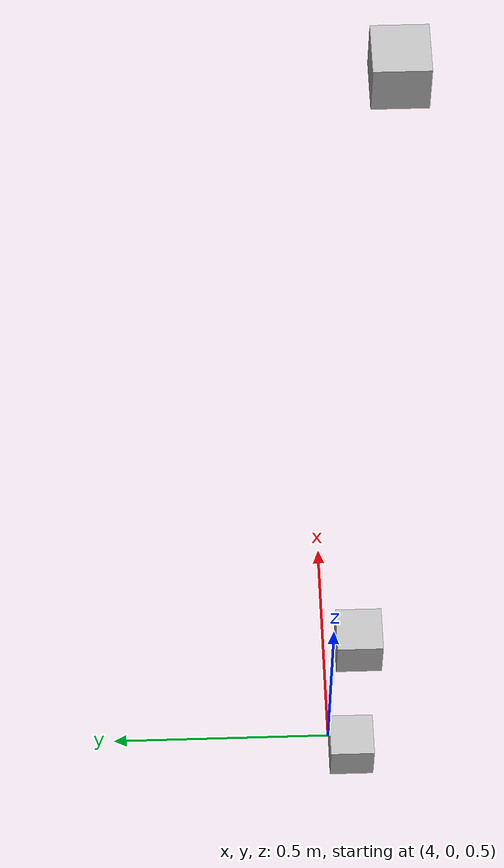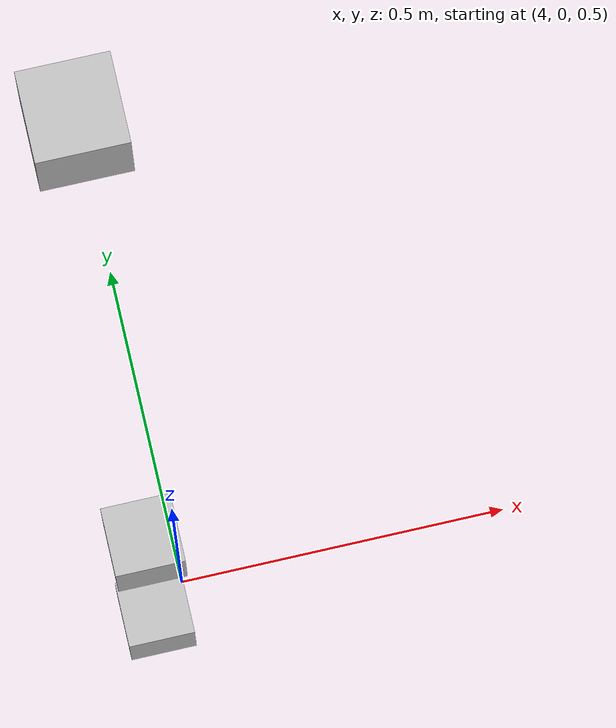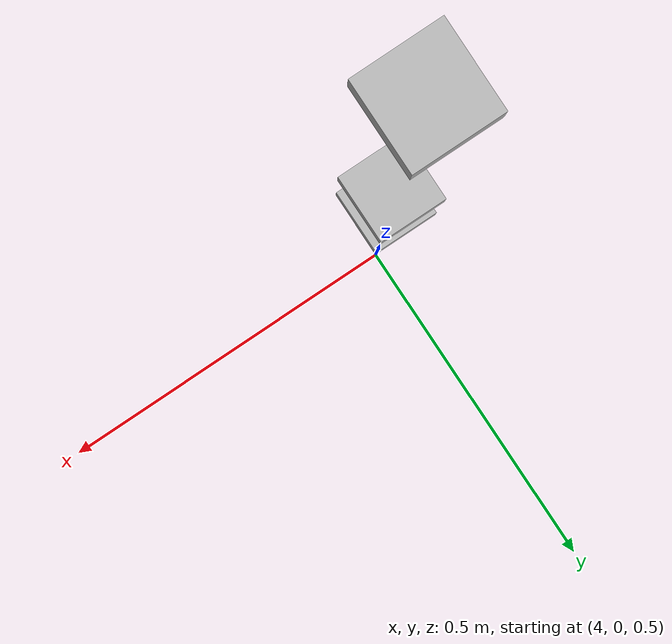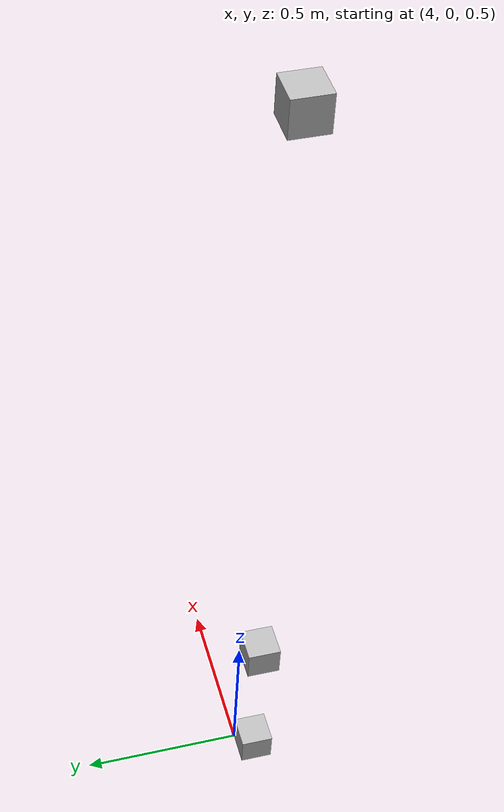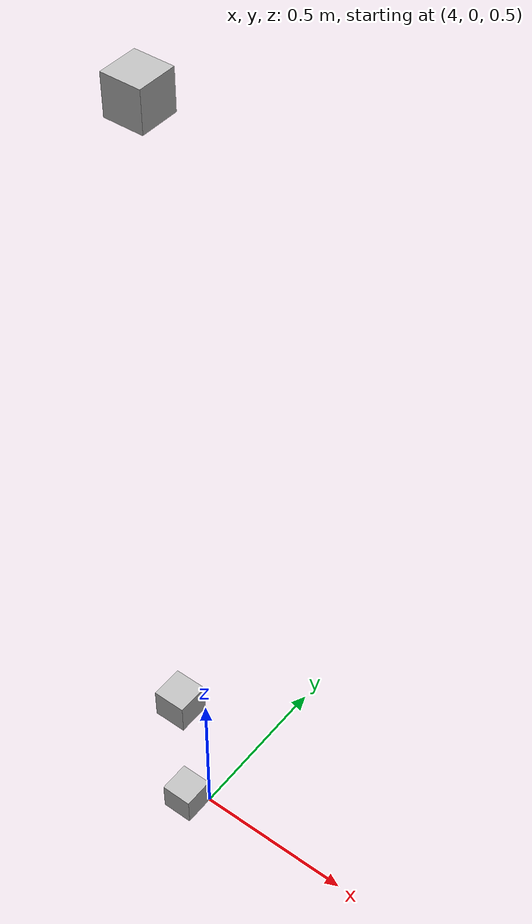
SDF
<?xml version="1.0" ?>
<sdf version="1.6">
  <world name="sensors">
    <model name="model_with_imu">
      <pose>4 0 3.0 0 0.0 3.14</pose>
      <link name="link">
        <pose>0.05 0.05 0.05 0 0 0</pose>
        <inertial>
          <mass>0.1</mass>
          <inertia>
            <ixx>0.000166667</ixx>
            <iyy>0.000166667</iyy>
            <izz>0.000166667</izz>
          </inertia>
        </inertial>
        <collision name="collision">
          <geometry>
            <box>
              <size>0.1 0.1 0.1</size>
            </box>
          </geometry>
        </collision>
        <visual name="visual">
          <geometry>
            <box>
              <size>0.1 0.1 0.1</size>
            </box>
          </geometry>
        </visual>
        <sensor name="imu" type="imu">
          <always_on>1</always_on>
          <update_rate>100</update_rate>
          <visualize>true</visualize>
          <topic>imu</topic>
          <enable_metrics>true</enable_metrics>
        </sensor>
      </link>
    </model>

    <model name="model_with_camera">
      <pose>4 0 1.0 0 0.0 3.14</pose>
      <link name="link">
        <pose>0.05 0.05 0.05 0 0 0</pose>
        <inertial>
          <mass>0.1</mass>
          <inertia>
            <ixx>0.000166667</ixx>
            <iyy>0.000166667</iyy>
            <izz>0.000166667</izz>
          </inertia>
        </inertial>
        <collision name="collision">
          <geometry>
            <box>
              <size>0.1 0.1 0.1</size>
            </box>
          </geometry>
        </collision>
        <visual name="visual">
          <geometry>
            <box>
              <size>0.1 0.1 0.1</size>
            </box>
          </geometry>
        </visual>
        <sensor name="camera" type="camera">
          <camera>
            <horizontal_fov>1.047</horizontal_fov>
            <image>
              <width>320</width>
              <height>240</height>
            </image>
            <clip>
              <near>0.1</near>
              <far>100</far>
            </clip>
          </camera>
          <always_on>1</always_on>
          <update_rate>30</update_rate>
          <visualize>true</visualize>
          <topic>camera</topic>
        </sensor>
      </link>
    </model>

    <model name="model_with_lidar">
      <static>true</static>
      <pose>4 0 0.5 0 0.0 3.14</pose>
      <link name="link">
        <pose>0.05 0.05 0.05 0 0 0</pose>
        <inertial>
          <mass>0.1</mass>
          <inertia>
            <ixx>0.000166667</ixx>
            <iyy>0.000166667</iyy>
            <izz>0.000166667</izz>
          </inertia>
        </inertial>
        <collision name="collision">
          <geometry>
            <box>
              <size>0.1 0.1 0.1</size>
            </box>
          </geometry>
        </collision>
        <visual name="visual">
          <geometry>
            <box>
              <size>0.1 0.1 0.1</size>
            </box>
          </geometry>
        </visual>

        <sensor name='gpu_lidar' type='gpu_lidar'>
          <topic>lidar</topic>
          <update_rate>10</update_rate>
          <lidar>
            <scan>
              <horizontal>
                <samples>640</samples>
                <resolution>1</resolution>
                <min_angle>-1.396263</min_angle>
                <max_angle>1.396263</max_angle>
              </horizontal>
              <vertical>
                <samples>16</samples>
                <resolution>1</resolution>
                <min_angle>-0.261799</min_angle>
                <max_angle>0.261799</max_angle>
              </vertical>
            </scan>
            <range>
              <min>0.08</min>
              <max>10.0</max>
              <resolution>0.01</resolution>
            </range>
          </lidar>
          <alwaysOn>1</alwaysOn>
          <visualize>true</visualize>
        </sensor>
      </link>
    </model>
  </world>
</sdf>
